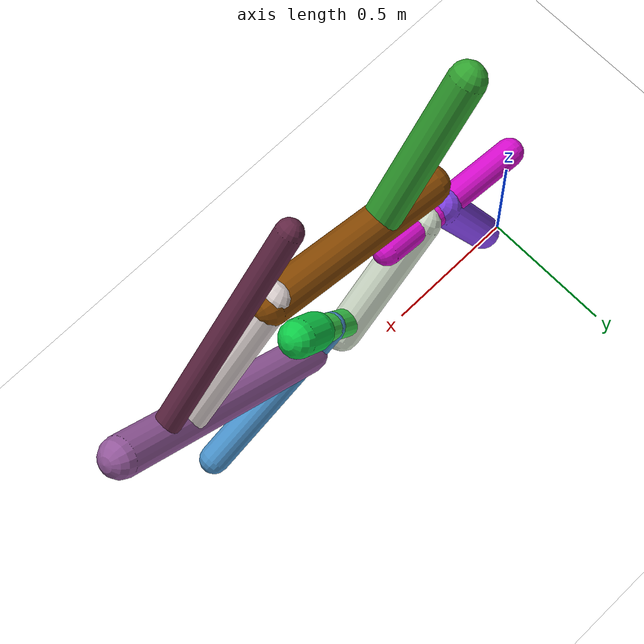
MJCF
<mujoco model="morphology">
  <option timestep="0.01"/>
  <default>
    <default class="/"/>
    <default class="0/"/>
    <default class="0/1/"/>
    <default class="0/2/"/>
    <default class="0/2/3/"/>
    <default class="0/2/3/4/"/>
    <default class="0/2/3/5/"/>
    <default class="0/2/3/5/6/"/>
    <default class="0/2/3/5/6/7/"/>
    <default class="0/2/3/5/6/8/"/>
    <default class="0/2/3/5/6/8/9/"/>
    <default class="0/2/3/5/6/8/9/10/"/>
  </default>
  <asset>
    <texture name="texplane" type="2d" builtin="checker" rgb1="0.10000000000000001 0.20000000000000001 0.29999999999999999" rgb2="0.20000000000000001 0.29999999999999999 0.40000000000000002" width="300" height="300"/>
    <material name="MatPlane" class="/" texture="texplane" texrepeat="20 20" specular="1" shininess="1" reflectance="0.5"/>
  </asset>
  <worldbody>
    <light name="//unnamed_light_0" class="/" directional="true" pos="0 0 1.5" dir="0 0 -1.3" cutoff="100" exponent="1" diffuse="1 1 1" specular="0.10000000000000001 0.10000000000000001 0.10000000000000001"/>
    <geom name="ground" class="/" type="plane" size="15 15 0.5" material="MatPlane" rgba="1 1 1 1"/>
    <site name="body" class="/" size="9.9999999999999995e-07 9.9999999999999995e-07 9.9999999999999995e-07" pos="0 0 0.63942966461181638"/>
    <body pos="0 0 0.63942966461181638" name="0/">
      <joint name="0/rootx/" class="/" type="slide" axis="1 0 0" limited="false" stiffness="0" armature="0" damping="0"/>
      <joint name="0/rootz/" class="/" type="slide" axis="0 0 1" limited="false" stiffness="0" armature="0" damping="0"/>
      <joint name="0/rooty/" class="/" type="hinge" axis="0 1 0" limited="false" stiffness="0" armature="0" damping="0"/>
      <geom name="0/geom" class="0/" type="capsule" contype="1" conaffinity="1" condim="3" size="0.049507468743345322" rgba="0.83816880130761595 0.045670209763322589 0.79985307390554761 1" friction="0.59999999999999998 0.10000000000000001 0.10000000000000001" fromto="0 0 0 0.57926437542921483 0 0.12633981153373464"/>
      <site name="0/end0" class="0/" size="0.0050000000000000001" pos="0.57926437542921483 0 0.12633981153373464"/>
      <site name="0/attach1" class="0/" size="9.9999999999999995e-07 9.9999999999999995e-07 9.9999999999999995e-07" pos="0.32430725967164203 0 0.070732673721869546"/>
      <body pos="0.32430725967164203 0 0.070732673721869546" name="0/1/">
        <joint name="0/1/joint/" class="0/" type="hinge" axis="0 1 0" limited="true" range="-57.487548491513564 57.487548491513564"/>
        <geom name="0/1/geom" class="0/1/" type="capsule" contype="1" conaffinity="1" condim="3" size="0.063451022020879419" rgba="0.51478728854579126 0.26396800490229755 0.91423498751599208 1" friction="0.59999999999999998 0.10000000000000001 0.10000000000000001" fromto="0 0 0 -0.2368437402058835 0 -0.61016235146289388"/>
        <site name="0/1/end1" class="0/1/" size="0.0050000000000000001" pos="-0.2368437402058835 0 -0.61016235146289388"/>
      </body>
      <site name="0/attach2" class="0/" size="9.9999999999999995e-07 9.9999999999999995e-07 9.9999999999999995e-07" pos="0.41661913524216071 0 0.09086625254460183"/>
      <body pos="0.41661913524216071 0 0.09086625254460183" name="0/2/">
        <joint name="0/2/joint/" class="0/" type="hinge" axis="0 1 0" limited="true" range="-43.482723951133387 43.482723951133387"/>
        <geom name="0/2/geom" class="0/2/" type="capsule" contype="1" conaffinity="1" condim="3" size="0.062551332717362865" rgba="0.84320806846540475 0.89157082795124054 0.8153498354520603 1" friction="0.59999999999999998 0.10000000000000001 0.10000000000000001" fromto="0 0 0 0.37374852714985485 0 -0.33563235198904406"/>
        <site name="0/2/end2" class="0/2/" size="0.0050000000000000001" pos="0.37374852714985485 0 -0.33563235198904406"/>
        <site name="0/2/attach3" class="0/2/" size="9.9999999999999995e-07 9.9999999999999995e-07 9.9999999999999995e-07" pos="0.33183613229902698 0 -0.29799432898852368"/>
        <body pos="0.33183613229902698 0 -0.29799432898852368" name="0/2/3/">
          <joint name="0/2/3/joint/" class="0/2/" type="hinge" axis="0 1 0" limited="true" range="-38.54949329977854 38.54949329977854"/>
          <geom name="0/2/3/geom" class="0/2/3/" type="capsule" contype="1" conaffinity="1" condim="3" size="0.048879063535247701" rgba="0.23819564598099052 0.83414149344072264 0.31200776274805964 1" friction="0.59999999999999998 0.10000000000000001 0.10000000000000001" fromto="0 0 0 0.16458580975372517 0 0.21735789195952426"/>
          <site name="0/2/3/end3" class="0/2/3/" size="0.0050000000000000001" pos="0.16458580975372517 0 0.21735789195952426"/>
          <site name="0/2/3/attach4" class="0/2/3/" size="9.9999999999999995e-07 9.9999999999999995e-07 9.9999999999999995e-07" pos="0.1598894883940182 0 0.21115576243063097"/>
          <body pos="0.1598894883940182 0 0.21115576243063097" name="0/2/3/4/">
            <joint name="0/2/3/4/joint/" class="0/2/3/" type="hinge" axis="0 1 0" limited="true" range="-55.321392888456558 55.321392888456558"/>
            <geom name="0/2/3/4/geom" class="0/2/3/4/" type="capsule" contype="1" conaffinity="1" condim="3" size="0.066920458151939324" rgba="0.051949149410922768 0.79032441632113137 0.27720047539977322 1" friction="0.59999999999999998 0.10000000000000001 0.10000000000000001" fromto="0 0 0 0.068857330211181123 0 0.070942475910680591"/>
            <site name="0/2/3/4/end4" class="0/2/3/4/" size="0.0050000000000000001" pos="0.068857330211181123 0 0.070942475910680591"/>
          </body>
          <site name="0/2/3/attach5" class="0/2/3/" size="9.9999999999999995e-07 9.9999999999999995e-07 9.9999999999999995e-07" pos="0.089557995451189198 0 0.11827348377432373"/>
          <body pos="0.089557995451189198 0 0.11827348377432373" name="0/2/3/5/">
            <joint name="0/2/3/5/joint/" class="0/2/3/" type="hinge" axis="0 1 0" limited="true" range="-64.62400057989106 64.62400057989106"/>
            <geom name="0/2/3/5/geom" class="0/2/3/5/" type="capsule" contype="1" conaffinity="1" condim="3" size="0.050824019160924952" rgba="0.28504016476794969 0.57141780421196076 0.79465183262139805 1" friction="0.59999999999999998 0.10000000000000001 0.10000000000000001" fromto="0 0 0 0.54973244816123401 0 -0.22557559798198046"/>
            <site name="0/2/3/5/end5" class="0/2/3/5/" size="0.0050000000000000001" pos="0.54973244816123401 0 -0.22557559798198046"/>
            <site name="0/2/3/5/attach6" class="0/2/3/5/" size="9.9999999999999995e-07 9.9999999999999995e-07 9.9999999999999995e-07" pos="0.10865655834642572 0 -0.044585812981645545"/>
            <body pos="0.10865655834642572 0 -0.044585812981645545" name="0/2/3/5/6/">
              <joint name="0/2/3/5/6/joint/" class="0/2/3/5/" type="hinge" axis="0 1 0" limited="true" range="-62.012439413235484 62.012439413235484"/>
              <geom name="0/2/3/5/6/geom" class="0/2/3/5/6/" type="capsule" contype="1" conaffinity="1" condim="3" size="0.067466546686297951" rgba="0.57445642071861502 0.34467597124255556 0.6068743260111088 1" friction="0.59999999999999998 0.10000000000000001 0.10000000000000001" fromto="0 0 0 0.71769015723405705 0 0.56147357891738747"/>
              <site name="0/2/3/5/6/end6" class="0/2/3/5/6/" size="0.0050000000000000001" pos="0.71769015723405705 0 0.56147357891738747"/>
              <site name="0/2/3/5/6/attach7" class="0/2/3/5/6/" size="9.9999999999999995e-07 9.9999999999999995e-07 9.9999999999999995e-07" pos="0.57888878768001495 0 0.45288451588426176"/>
              <body pos="0.57888878768001495 0 0.45288451588426176" name="0/2/3/5/6/7/">
                <joint name="0/2/3/5/6/7/joint/" class="0/2/3/5/6/" type="hinge" axis="0 1 0" limited="true" range="-43.955251206066016 43.955251206066016"/>
                <geom name="0/2/3/5/6/7/geom" class="0/2/3/5/6/7/" type="capsule" contype="1" conaffinity="1" condim="3" size="0.043000014281078559" rgba="0.37818556379409995 0.15019316801281868 0.2654656260229018 1" friction="0.59999999999999998 0.10000000000000001 0.10000000000000001" fromto="0 0 0 -0.56936368294097939 0 0.58972308455490174"/>
                <site name="0/2/3/5/6/7/end7" class="0/2/3/5/6/7/" size="0.0050000000000000001" pos="-0.56936368294097939 0 0.58972308455490174"/>
              </body>
              <site name="0/2/3/5/6/attach8" class="0/2/3/5/6/" size="9.9999999999999995e-07 9.9999999999999995e-07 9.9999999999999995e-07" pos="0.4945357262322152 0 0.38689222822872898"/>
              <body pos="0.4945357262322152 0 0.38689222822872898" name="0/2/3/5/6/8/">
                <joint name="0/2/3/5/6/8/joint/" class="0/2/3/5/6/" type="hinge" axis="0 1 0" limited="true" range="-34.630191183867971 34.630191183867971"/>
                <geom name="0/2/3/5/6/8/geom" class="0/2/3/5/6/8/" type="capsule" contype="1" conaffinity="1" condim="3" size="0.059831514554064581" rgba="0.85561662266650496 0.81420386750263585 0.8095196609111287 1" friction="0.59999999999999998 0.10000000000000001 0.10000000000000001" fromto="0 0 0 -0.39508030726415178 0 0.30800483210581442"/>
                <site name="0/2/3/5/6/8/end8" class="0/2/3/5/6/8/" size="0.0050000000000000001" pos="-0.39508030726415178 0 0.30800483210581442"/>
                <site name="0/2/3/5/6/8/attach9" class="0/2/3/5/6/8/" size="9.9999999999999995e-07 9.9999999999999995e-07 9.9999999999999995e-07" pos="-0.37823046054881576 0 0.29486868202912675"/>
                <body pos="-0.37823046054881576 0 0.29486868202912675" name="0/2/3/5/6/8/9/">
                  <joint name="0/2/3/5/6/8/9/joint/" class="0/2/3/5/6/8/" type="hinge" axis="0 1 0" limited="true" range="-55.016751859559179 55.016751859559179"/>
                  <geom name="0/2/3/5/6/8/9/geom" class="0/2/3/5/6/8/9/" type="capsule" contype="1" conaffinity="1" condim="3" size="0.067223222845685882" rgba="0.52265038236182704 0.27773286637054284 0.0052079532379354365 1" friction="0.59999999999999998 0.10000000000000001 0.10000000000000001" fromto="0 0 0 -0.66809740586865429 0 -0.20199903464464908"/>
                  <site name="0/2/3/5/6/8/9/end9" class="0/2/3/5/6/8/9/" size="0.0050000000000000001" pos="-0.66809740586865429 0 -0.20199903464464908"/>
                  <site name="0/2/3/5/6/8/9/attach10" class="0/2/3/5/6/8/9/" size="9.9999999999999995e-07 9.9999999999999995e-07 9.9999999999999995e-07" pos="-0.4456230365669504 0 -0.13473398102018355"/>
                  <body pos="-0.4456230365669504 0 -0.13473398102018355" name="0/2/3/5/6/8/9/10/">
                    <joint name="0/2/3/5/6/8/9/10/joint/" class="0/2/3/5/6/8/9/" type="hinge" axis="0 1 0" limited="true" range="-38.865086521053279 38.865086521053279"/>
                    <geom name="0/2/3/5/6/8/9/10/geom" class="0/2/3/5/6/8/9/10/" type="capsule" contype="1" conaffinity="1" condim="3" size="0.060680267246479055" rgba="0.19363318828301335 0.63693867104780011 0.18862714100576661 1" friction="0.59999999999999998 0.10000000000000001 0.10000000000000001" fromto="0 0 0 -0.35722244942218551 0 0.44769122086331103"/>
                    <site name="0/2/3/5/6/8/9/10/end10" class="0/2/3/5/6/8/9/10/" size="0.0050000000000000001" pos="-0.35722244942218551 0 0.44769122086331103"/>
                  </body>
                </body>
              </body>
            </body>
          </body>
        </body>
      </body>
      <camera name="0/side" class="0/" mode="trackcom" pos="0.40000000000000002 -4 0.20000000000000001" quat="0.70699999999999996 0.70699999999999996 0 0"/>
    </body>
  </worldbody>
  <actuator>
    <motor name="0/1/motor" class="0/1/" ctrllimited="true" ctrlrange="-1 1" gear="76" joint="0/1/joint/"/>
    <motor name="0/2/motor" class="0/2/" ctrllimited="true" ctrlrange="-1 1" gear="58" joint="0/2/joint/"/>
    <motor name="0/2/3/motor" class="0/2/3/" ctrllimited="true" ctrlrange="-1 1" gear="73" joint="0/2/3/joint/"/>
    <motor name="0/2/3/4/motor" class="0/2/3/4/" ctrllimited="true" ctrlrange="-1 1" gear="71" joint="0/2/3/4/joint/"/>
    <motor name="0/2/3/5/motor" class="0/2/3/5/" ctrllimited="true" ctrlrange="-1 1" gear="77" joint="0/2/3/5/joint/"/>
    <motor name="0/2/3/5/6/motor" class="0/2/3/5/6/" ctrllimited="true" ctrlrange="-1 1" gear="54" joint="0/2/3/5/6/joint/"/>
    <motor name="0/2/3/5/6/7/motor" class="0/2/3/5/6/7/" ctrllimited="true" ctrlrange="-1 1" gear="52" joint="0/2/3/5/6/7/joint/"/>
    <motor name="0/2/3/5/6/8/motor" class="0/2/3/5/6/8/" ctrllimited="true" ctrlrange="-1 1" gear="60" joint="0/2/3/5/6/8/joint/"/>
    <motor name="0/2/3/5/6/8/9/motor" class="0/2/3/5/6/8/9/" ctrllimited="true" ctrlrange="-1 1" gear="80" joint="0/2/3/5/6/8/9/joint/"/>
    <motor name="0/2/3/5/6/8/9/10/motor" class="0/2/3/5/6/8/9/10/" ctrllimited="true" ctrlrange="-1 1" gear="85" joint="0/2/3/5/6/8/9/10/joint/"/>
  </actuator>
  <sensor>
    <subtreelinvel name="velocity" body="0/"/>
  </sensor>
</mujoco>
